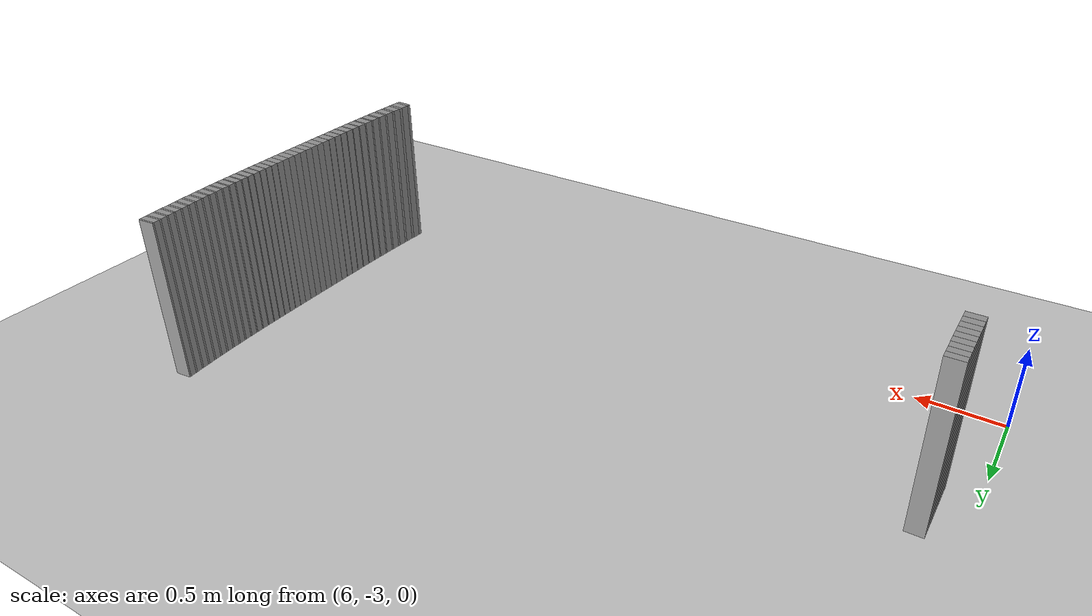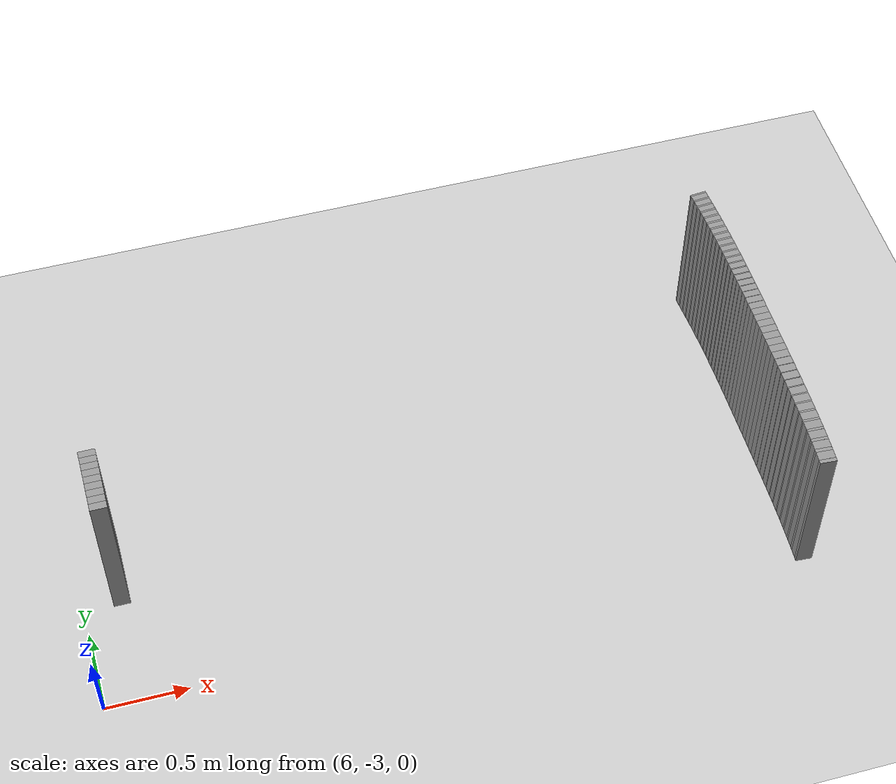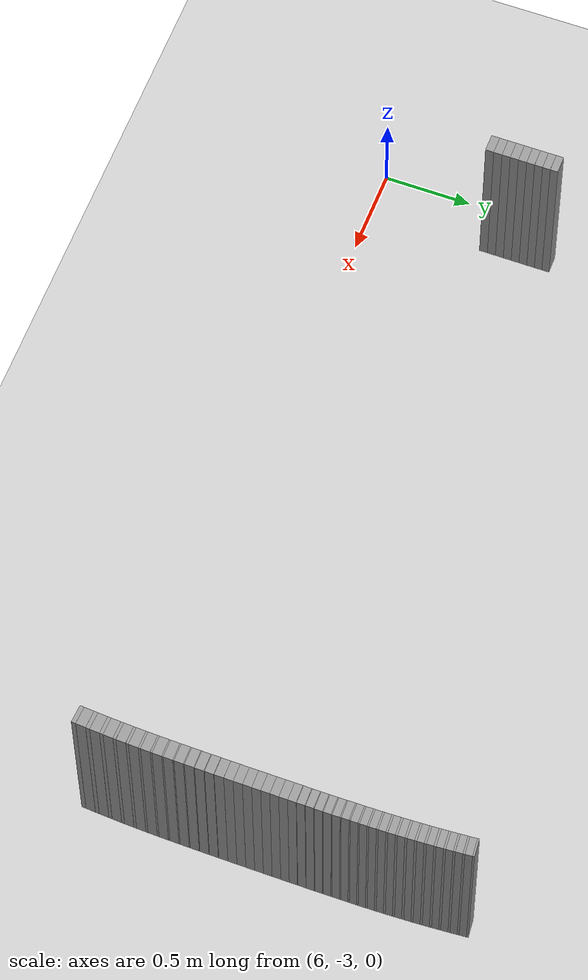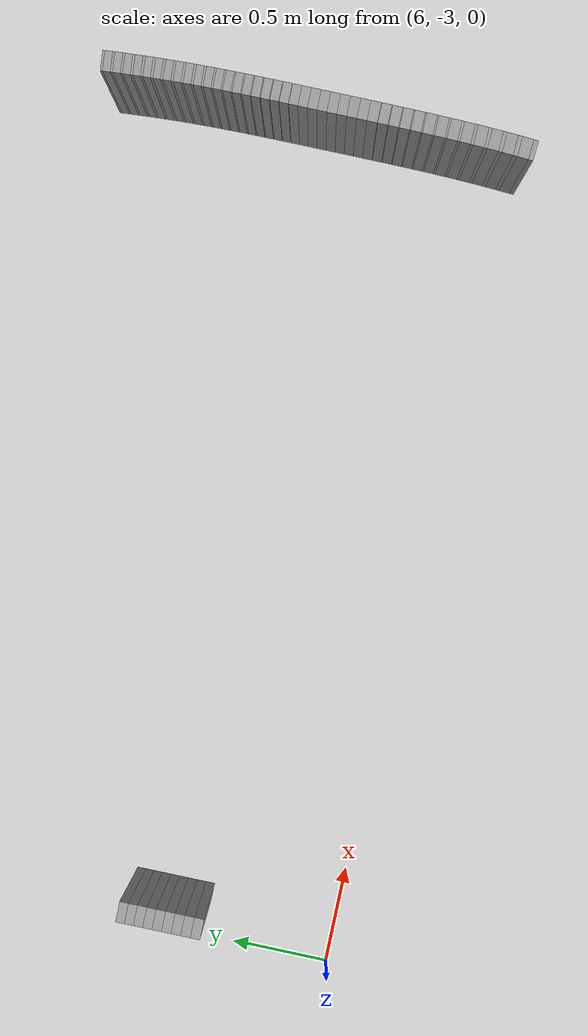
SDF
<sdf version="1.6">
 <world name="default">
  <include><uri>model://ground_plane</uri></include>
  <include><uri>model://sun</uri></include>
  <model name="wall_433_outward">
   <static>true</static>
   <link name="link">
    <collision name="collision">
     <geometry><box><size>0.010283247363122095 0.1 1.0</size></box></geometry>
    </collision>
    <visual name="visual">
     <geometry><box><size>0.010283247363122095 0.1 1.0</size></box></geometry>
     <material>
      <script><uri>file://media/materials/scripts/gazebo.material</uri><name>Gazebo/Gray</name></script>
     </material>
    </visual>
   </link>
   <pose>10.190817480555708 -1.003912621451101 0.5 0 0 -1.4846179983201915</pose>
  </model>
  <model name="wall_434_outward">
   <static>true</static>
   <link name="link">
    <collision name="collision">
     <geometry><box><size>0.03836517775578271 0.1 1.0</size></box></geometry>
    </collision>
    <visual name="visual">
     <geometry><box><size>0.03836517775578271 0.1 1.0</size></box></geometry>
     <material>
      <script><uri>file://media/materials/scripts/gazebo.material</uri><name>Gazebo/Gray</name></script>
     </material>
    </visual>
   </link>
   <pose>10.192861969558543 -1.028150746987186 0.5 0 0 -1.4871888129927435</pose>
  </model>
  <model name="wall_435_outward">
   <static>true</static>
   <link name="link">
    <collision name="collision">
     <geometry><box><size>0.010640363585990922 0.1 1.0</size></box></geometry>
    </collision>
    <visual name="visual">
     <geometry><box><size>0.010640363585990922 0.1 1.0</size></box></geometry>
     <material>
      <script><uri>file://media/materials/scripts/gazebo.material</uri><name>Gazebo/Gray</name></script>
     </material>
    </visual>
   </link>
   <pose>10.19489409511391 -1.0525690907911234 0.5 0 0 -1.4898489070264267</pose>
  </model>
  <model name="wall_436_outward">
   <static>true</static>
   <link name="link">
    <collision name="collision">
     <geometry><box><size>0.03789650581154676 0.1 1.0</size></box></geometry>
    </collision>
    <visual name="visual">
     <geometry><box><size>0.03789650581154676 0.1 1.0</size></box></geometry>
     <material>
      <script><uri>file://media/materials/scripts/gazebo.material</uri><name>Gazebo/Gray</name></script>
     </material>
    </visual>
   </link>
   <pose>10.196806173180468 -1.0767620684265373 0.5 0 0 -1.4925090010601008</pose>
  </model>
  <model name="wall_437_outward">
   <static>true</static>
   <link name="link">
    <collision name="collision">
     <geometry><box><size>0.011047826671488865 0.1 1.0</size></box></geometry>
    </collision>
    <visual name="visual">
     <geometry><box><size>0.011047826671488865 0.1 1.0</size></box></geometry>
     <material>
      <script><uri>file://media/materials/scripts/gazebo.material</uri><name>Gazebo/Gray</name></script>
     </material>
    </visual>
   </link>
   <pose>10.198704865481698 -1.1011604513574302 0.5 0 0 -1.4952709612395514</pose>
  </model>
  <model name="wall_438_outward">
   <static>true</static>
   <link name="link">
    <collision name="collision">
     <geometry><box><size>0.03755785765400024 0.1 1.0</size></box></geometry>
    </collision>
    <visual name="visual">
     <geometry><box><size>0.03755785765400024 0.1 1.0</size></box></geometry>
     <material>
      <script><uri>file://media/materials/scripts/gazebo.material</uri><name>Gazebo/Gray</name></script>
     </material>
    </visual>
   </link>
   <pose>10.200486877925421 -1.1253978558702395 0.5 0 0 -1.4980329214189771</pose>
  </model>
  <model name="wall_439_outward">
   <static>true</static>
   <link name="link">
    <collision name="collision">
     <geometry><box><size>0.011444863622709397 0.1 1.0</size></box></geometry>
    </collision>
    <visual name="visual">
     <geometry><box><size>0.011444863622709397 0.1 1.0</size></box></geometry>
     <material>
      <script><uri>file://media/materials/scripts/gazebo.material</uri><name>Gazebo/Gray</name></script>
     </material>
    </visual>
   </link>
   <pose>10.202251776108643 -1.1498355506836848 0.5 0 0 -1.50089414122854</pose>
  </model>
  <model name="wall_440_outward">
   <static>true</static>
   <link name="link">
    <collision name="collision">
     <geometry><box><size>0.03734177833056534 0.1 1.0</size></box></geometry>
    </collision>
    <visual name="visual">
     <geometry><box><size>0.03734177833056534 0.1 1.0</size></box></geometry>
     <material>
      <script><uri>file://media/materials/scripts/gazebo.material</uri><name>Gazebo/Gray</name></script>
     </material>
    </visual>
   </link>
   <pose>10.203902237930976 -1.1741729541886838 0.5 0 0 -1.5037553610381957</pose>
  </model>
  <model name="wall_441_outward">
   <static>true</static>
   <link name="link">
    <collision name="collision">
     <geometry><box><size>0.01176774374360028 0.1 1.0</size></box></geometry>
    </collision>
    <visual name="visual">
     <geometry><box><size>0.01176774374360028 0.1 1.0</size></box></geometry>
     <material>
      <script><uri>file://media/materials/scripts/gazebo.material</uri><name>Gazebo/Gray</name></script>
     </material>
    </visual>
   </link>
   <pose>10.20552990718752 -1.1986736895157213 0.5 0 0 -1.5066973012178086</pose>
  </model>
  <model name="wall_442_outward">
   <static>true</static>
   <link name="link">
    <collision name="collision">
     <geometry><box><size>0.03724069599607796 0.1 1.0</size></box></geometry>
    </collision>
    <visual name="visual">
     <geometry><box><size>0.03724069599607796 0.1 1.0</size></box></geometry>
     <material>
      <script><uri>file://media/materials/scripts/gazebo.material</uri><name>Gazebo/Gray</name></script>
     </material>
    </visual>
   </link>
   <pose>10.207044855907323 -1.2231310150760841 0.5 0 0 -1.5096392413975013</pose>
  </model>
  <model name="wall_443_outward">
   <static>true</static>
   <link name="link">
    <collision name="collision">
     <geometry><box><size>0.012011477919110995 0.1 1.0</size></box></geometry>
    </collision>
    <visual name="visual">
     <geometry><box><size>0.012011477919110995 0.1 1.0</size></box></geometry>
     <material>
      <script><uri>file://media/materials/scripts/gazebo.material</uri><name>Gazebo/Gray</name></script>
     </material>
    </visual>
   </link>
   <pose>10.208531974571702 -1.2477121384949186 0.5 0 0 -1.512642115390247</pose>
  </model>
  <model name="wall_444_outward">
   <static>true</static>
   <link name="link">
    <collision name="collision">
     <geometry><box><size>0.03724624450224491 0.1 1.0</size></box></geometry>
    </collision>
    <visual name="visual">
     <geometry><box><size>0.03724624450224491 0.1 1.0</size></box></geometry>
     <material>
      <script><uri>file://media/materials/scripts/gazebo.material</uri><name>Gazebo/Gray</name></script>
     </material>
    </visual>
   </link>
   <pose>10.209907606257449 -1.2723025316080978 0.5 0 0 -1.5156449893829436</pose>
  </model>
  <model name="wall_445_outward">
   <static>true</static>
   <link name="link">
    <collision name="collision">
     <geometry><box><size>0.012053729576341491 0.1 1.0</size></box></geometry>
    </collision>
    <visual name="visual">
     <geometry><box><size>0.012053729576341491 0.1 1.0</size></box></geometry>
     <material>
      <script><uri>file://media/materials/scripts/gazebo.material</uri><name>Gazebo/Gray</name></script>
     </material>
    </visual>
   </link>
   <pose>10.211248261488908 -1.296916013388779 0.5 0 0 -1.5186584263377252</pose>
  </model>
  <model name="wall_446_outward">
   <static>true</static>
   <link name="link">
    <collision name="collision">
     <geometry><box><size>0.037349229340165276 0.1 1.0</size></box></geometry>
    </collision>
    <visual name="visual">
     <geometry><box><size>0.037349229340165276 0.1 1.0</size></box></geometry>
     <material>
      <script><uri>file://media/materials/scripts/gazebo.material</uri><name>Gazebo/Gray</name></script>
     </material>
    </visual>
   </link>
   <pose>10.212479358719358 -1.3215867747268046 0.5 0 0 -1.5216718632926327</pose>
  </model>
  <model name="wall_447_outward">
   <static>true</static>
   <link name="link">
    <collision name="collision">
     <geometry><box><size>0.011939399232365483 0.1 1.0</size></box></geometry>
    </collision>
    <visual name="visual">
     <geometry><box><size>0.011939399232365483 0.1 1.0</size></box></geometry>
     <material>
      <script><uri>file://media/materials/scripts/gazebo.material</uri><name>Gazebo/Gray</name></script>
     </material>
    </visual>
   </link>
   <pose>10.213671712107487 -1.3462022074227273 0.5 0 0 -1.5246567175327987</pose>
  </model>
  <model name="wall_448_outward">
   <static>true</static>
   <link name="link">
    <collision name="collision">
     <geometry><box><size>0.03754241336318813 0.1 1.0</size></box></geometry>
    </collision>
    <visual name="visual">
     <geometry><box><size>0.03754241336318813 0.1 1.0</size></box></geometry>
     <material>
      <script><uri>file://media/materials/scripts/gazebo.material</uri><name>Gazebo/Gray</name></script>
     </material>
    </visual>
   </link>
   <pose>10.214756869410241 -1.3709192841045637 0.5 0 0 -1.527641571773139</pose>
  </model>
  <model name="wall_449_outward">
   <static>true</static>
   <link name="link">
    <collision name="collision">
     <geometry><box><size>0.011591471049819972 0.1 1.0</size></box></geometry>
    </collision>
    <visual name="visual">
     <geometry><box><size>0.011591471049819972 0.1 1.0</size></box></geometry>
     <material>
      <script><uri>file://media/materials/scripts/gazebo.material</uri><name>Gazebo/Gray</name></script>
     </material>
    </visual>
   </link>
   <pose>10.215799940057083 -1.3954640542073316 0.5 0 0 -1.530539443591488</pose>
  </model>
  <model name="wall_450_outward">
   <static>true</static>
   <link name="link">
    <collision name="collision">
     <geometry><box><size>0.03781951222594938 0.1 1.0</size></box></geometry>
    </collision>
    <visual name="visual">
     <geometry><box><size>0.03781951222594938 0.1 1.0</size></box></geometry>
     <material>
      <script><uri>file://media/materials/scripts/gazebo.material</uri><name>Gazebo/Gray</name></script>
     </material>
    </visual>
   </link>
   <pose>10.216739480764275 -1.4201516555484939 0.5 0 0 -1.5334373154098275</pose>
  </model>
  <model name="wall_451_outward">
   <static>true</static>
   <link name="link">
    <collision name="collision">
     <geometry><box><size>0.011036451604866762 0.1 1.0</size></box></geometry>
    </collision>
    <visual name="visual">
     <geometry><box><size>0.011036451604866762 0.1 1.0</size></box></geometry>
     <material>
      <script><uri>file://media/materials/scripts/gazebo.material</uri><name>Gazebo/Gray</name></script>
     </material>
    </visual>
   </link>
   <pose>10.217636658178298 -1.4445631401156602 0.5 0 0 -1.5361964318117476</pose>
  </model>
  <model name="wall_452_outward">
   <static>true</static>
   <link name="link">
    <collision name="collision">
     <geometry><box><size>0.038175895245052646 0.1 1.0</size></box></geometry>
    </collision>
    <visual name="visual">
     <geometry><box><size>0.038175895245052646 0.1 1.0</size></box></geometry>
     <material>
      <script><uri>file://media/materials/scripts/gazebo.material</uri><name>Gazebo/Gray</name></script>
     </material>
    </visual>
   </link>
   <pose>10.218435222540158 -1.4691563355916308 0.5 0 0 -1.5389555482137214</pose>
  </model>
  <model name="wall_453_outward">
   <static>true</static>
   <link name="link">
    <collision name="collision">
     <geometry><box><size>0.010277246191836325 0.1 1.0</size></box></geometry>
    </collision>
    <visual name="visual">
     <geometry><box><size>0.010277246191836325 0.1 1.0</size></box></geometry>
     <material>
      <script><uri>file://media/materials/scripts/gazebo.material</uri><name>Gazebo/Gray</name></script>
     </material>
    </visual>
   </link>
   <pose>10.219193288505094 -1.4933710298343397 0.5 0 0 -1.5415248625886087</pose>
  </model>
  <model name="wall_454_outward">
   <static>true</static>
   <link name="link">
    <collision name="collision">
     <geometry><box><size>0.038607292276248074 0.1 1.0</size></box></geometry>
    </collision>
    <visual name="visual">
     <geometry><box><size>0.038607292276248074 0.1 1.0</size></box></geometry>
     <material>
      <script><uri>file://media/materials/scripts/gazebo.material</uri><name>Gazebo/Gray</name></script>
     </material>
    </visual>
   </link>
   <pose>10.219859069649047 -1.5178042164042518 0.5 0 0 -1.5440941769632621</pose>
  </model>
  <model name="wall_455_outward">
   <static>true</static>
   <link name="link">
    <collision name="collision">
     <geometry><box><size>0.00938313225432359 0.1 1.0</size></box></geometry>
    </collision>
    <visual name="visual">
     <geometry><box><size>0.00938313225432359 0.1 1.0</size></box></geometry>
     <material>
      <script><uri>file://media/materials/scripts/gazebo.material</uri><name>Gazebo/Gray</name></script>
     </material>
    </visual>
   </link>
   <pose>10.220488715447278 -1.5417911557562411 0.5 0 0 -1.5464399621782812</pose>
  </model>
  <model name="wall_456_outward">
   <static>true</static>
   <link name="link">
    <collision name="collision">
     <geometry><box><size>0.03911100765697236 0.1 1.0</size></box></geometry>
    </collision>
    <visual name="visual">
     <geometry><box><size>0.03911100765697236 0.1 1.0</size></box></geometry>
     <material>
      <script><uri>file://media/materials/scripts/gazebo.material</uri><name>Gazebo/Gray</name></script>
     </material>
    </visual>
   </link>
   <pose>10.221033366860773 -1.5660320973926742 0.5 0 0 -1.5487857473931927</pose>
  </model>
  <model name="wall_457_outward">
   <static>true</static>
   <link name="link">
    <collision name="collision">
     <geometry><box><size>0.008387143192890138 0.1 1.0</size></box></geometry>
    </collision>
    <visual name="visual">
     <geometry><box><size>0.008387143192890138 0.1 1.0</size></box></geometry>
     <material>
      <script><uri>file://media/materials/scripts/gazebo.material</uri><name>Gazebo/Gray</name></script>
     </material>
    </visual>
   </link>
   <pose>10.221547264470246 -1.5897756045523006 0.5 0 0 -1.550882534727871</pose>
  </model>
  <model name="wall_458_outward">
   <static>true</static>
   <link name="link">
    <collision name="collision">
     <geometry><box><size>0.03968278660839817 0.1 1.0</size></box></geometry>
    </collision>
    <visual name="visual">
     <geometry><box><size>0.03968278660839817 0.1 1.0</size></box></geometry>
     <material>
      <script><uri>file://media/materials/scripts/gazebo.material</uri><name>Gazebo/Gray</name></script>
     </material>
    </visual>
   </link>
   <pose>10.221984264358813 -1.6138065887821398 0.5 0 0 -1.5529793220624908</pose>
  </model>
  <model name="wall_459_outward">
   <static>true</static>
   <link name="link">
    <collision name="collision">
     <geometry><box><size>0.007295739725011902 0.1 1.0</size></box></geometry>
    </collision>
    <visual name="visual">
     <geometry><box><size>0.007295739725011902 0.1 1.0</size></box></geometry>
     <material>
      <script><uri>file://media/materials/scripts/gazebo.material</uri><name>Gazebo/Gray</name></script>
     </material>
    </visual>
   </link>
   <pose>10.222396098000551 -1.6372922362371418 0.5 0 0 -1.554803258005004</pose>
  </model>
  <model name="wall_460_outward">
   <static>true</static>
   <link name="link">
    <collision name="collision">
     <geometry><box><size>0.04031791815811947 0.1 1.0</size></box></geometry>
    </collision>
    <visual name="visual">
     <geometry><box><size>0.04031791815811947 0.1 1.0</size></box></geometry>
     <material>
      <script><uri>file://media/materials/scripts/gazebo.material</uri><name>Gazebo/Gray</name></script>
     </material>
    </visual>
   </link>
   <pose>10.222740061558985 -1.6610965750997104 0.5 0 0 -1.5566271939475849</pose>
  </model>
  <model name="wall_461_outward">
   <static>true</static>
   <link name="link">
    <collision name="collision">
     <geometry><box><size>0.006215764477734683 0.1 1.0</size></box></geometry>
    </collision>
    <visual name="visual">
     <geometry><box><size>0.006215764477734683 0.1 1.0</size></box></geometry>
     <material>
      <script><uri>file://media/materials/scripts/gazebo.material</uri><name>Gazebo/Gray</name></script>
     </material>
    </visual>
   </link>
   <pose>10.223064892459252 -1.684361145555936 0.5 0 0 -1.5581811356926123</pose>
  </model>
  <model name="wall_462_outward">
   <static>true</static>
   <link name="link">
    <collision name="collision">
     <geometry><box><size>0.041008139792125295 0.1 1.0</size></box></geometry>
    </collision>
    <visual name="visual">
     <geometry><box><size>0.041008139792125295 0.1 1.0</size></box></geometry>
     <material>
      <script><uri>file://media/materials/scripts/gazebo.material</uri><name>Gazebo/Gray</name></script>
     </material>
    </visual>
   </link>
   <pose>10.223330893952825 -1.7079715960588495 0.5 0 0 -1.5597350774371945</pose>
  </model>
  <model name="wall_463_outward">
   <static>true</static>
   <link name="link">
    <collision name="collision">
     <geometry><box><size>0.005172292526792086 0.1 1.0</size></box></geometry>
    </collision>
    <visual name="visual">
     <geometry><box><size>0.005172292526792086 0.1 1.0</size></box></geometry>
     <material>
      <script><uri>file://media/materials/scripts/gazebo.material</uri><name>Gazebo/Gray</name></script>
     </material>
    </visual>
   </link>
   <pose>10.22358295148771 -1.7310604345014224 0.5 0 0 -1.5610281509294688</pose>
  </model>
  <model name="wall_464_outward">
   <static>true</static>
   <link name="link">
    <collision name="collision">
     <geometry><box><size>0.04174400456791671 0.1 1.0</size></box></geometry>
    </collision>
    <visual name="visual">
     <geometry><box><size>0.04174400456791671 0.1 1.0</size></box></geometry>
     <material>
      <script><uri>file://media/materials/scripts/gazebo.material</uri><name>Gazebo/Gray</name></script>
     </material>
    </visual>
   </link>
   <pose>10.223785103255977 -1.7545177100823364 0.5 0 0 -1.5623212244213236</pose>
  </model>
  <model name="wall_465_outward">
   <static>true</static>
   <link name="link">
    <collision name="collision">
     <geometry><box><size>0.004238774840771875 0.1 1.0</size></box></geometry>
    </collision>
    <visual name="visual">
     <geometry><box><size>0.004238774840771875 0.1 1.0</size></box></geometry>
     <material>
      <script><uri>file://media/materials/scripts/gazebo.material</uri><name>Gazebo/Gray</name></script>
     </material>
    </visual>
   </link>
   <pose>10.22397770947385 -1.7775082919302836 0.5 0 0 -1.5633809183298129</pose>
  </model>
  <model name="wall_466_outward">
   <static>true</static>
   <link name="link">
    <collision name="collision">
     <geometry><box><size>0.04251159002583642 0.1 1.0</size></box></geometry>
    </collision>
    <visual name="visual">
     <geometry><box><size>0.04251159002583642 0.1 1.0</size></box></geometry>
     <material>
      <script><uri>file://media/materials/scripts/gazebo.material</uri><name>Gazebo/Gray</name></script>
     </material>
    </visual>
   </link>
   <pose>10.224128520309474 -1.8008829867795 0.5 0 0 -1.564440612238371</pose>
  </model>
  <model name="wall_467_outward">
   <static>true</static>
   <link name="link">
    <collision name="collision">
     <geometry><box><size>0.003348781686091801 0.1 1.0</size></box></geometry>
    </collision>
    <visual name="visual">
     <geometry><box><size>0.003348781686091801 0.1 1.0</size></box></geometry>
     <material>
      <script><uri>file://media/materials/scripts/gazebo.material</uri><name>Gazebo/Gray</name></script>
     </material>
    </visual>
   </link>
   <pose>10.22427285527656 -1.8238127178259183 0.5 0 0 -1.565277807757937</pose>
  </model>
  <model name="wall_468_outward">
   <static>true</static>
   <link name="link">
    <collision name="collision">
     <geometry><box><size>0.04329575768152345 0.1 1.0</size></box></geometry>
    </collision>
    <visual name="visual">
     <geometry><box><size>0.04329575768152345 0.1 1.0</size></box></geometry>
     <material>
      <script><uri>file://media/materials/scripts/gazebo.material</uri><name>Gazebo/Gray</name></script>
     </material>
    </visual>
   </link>
   <pose>10.224383435741588 -1.8471347248098726 0.5 0 0 -1.5661150032770126</pose>
  </model>
  <model name="wall_469_outward">
   <static>true</static>
   <link name="link">
    <collision name="collision">
     <geometry><box><size>0.002627161558870315 0.1 1.0</size></box></geometry>
    </collision>
    <visual name="visual">
     <geometry><box><size>0.002627161558870315 0.1 1.0</size></box></geometry>
     <material>
      <script><uri>file://media/materials/scripts/gazebo.material</uri><name>Gazebo/Gray</name></script>
     </material>
    </visual>
   </link>
   <pose>10.224490062630807 -1.8700959365882126 0.5 0 0 -1.5667717937134578</pose>
  </model>
  <model name="wall_470_outward">
   <static>true</static>
   <link name="link">
    <collision name="collision">
     <geometry><box><size>0.04407969489634317 0.1 1.0</size></box></geometry>
    </collision>
    <visual name="visual">
     <geometry><box><size>0.04407969489634317 0.1 1.0</size></box></geometry>
     <material>
      <script><uri>file://media/materials/scripts/gazebo.material</uri><name>Gazebo/Gray</name></script>
     </material>
    </visual>
   </link>
   <pose>10.22456957355965 -1.893449229193441 0.5 0 0 -1.5674285841508886</pose>
  </model>
  <model name="wall_471_outward">
   <static>true</static>
   <link name="link">
    <collision name="collision">
     <geometry><box><size>0.0020243878247005226 0.1 1.0</size></box></geometry>
    </collision>
    <visual name="visual">
     <geometry><box><size>0.0020243878247005226 0.1 1.0</size></box></geometry>
     <material>
      <script><uri>file://media/materials/scripts/gazebo.material</uri><name>Gazebo/Gray</name></script>
     </material>
    </visual>
   </link>
   <pose>10.224646694489833 -1.9165011414250834 0.5 0 0 -1.5679346811290436</pose>
  </model>
  <model name="wall_472_outward">
   <static>true</static>
   <link name="link">
    <collision name="collision">
     <geometry><box><size>0.044844862980769326 0.1 1.0</size></box></geometry>
    </collision>
    <visual name="visual">
     <geometry><box><size>0.044844862980769326 0.1 1.0</size></box></geometry>
     <material>
      <script><uri>file://media/materials/scripts/gazebo.material</uri><name>Gazebo/Gray</name></script>
     </material>
    </visual>
   </link>
   <pose>10.224702408106447 -1.9399357004767546 0.5 0 0 -1.5684407781064484</pose>
  </model>
  <model name="wall_473_outward">
   <static>true</static>
   <link name="link">
    <collision name="collision">
     <geometry><box><size>0.04713773069509924 0.1 1.0</size></box></geometry>
    </collision>
    <visual name="visual">
     <geometry><box><size>0.04713773069509924 0.1 1.0</size></box></geometry>
     <material>
      <script><uri>file://media/materials/scripts/gazebo.material</uri><name>Gazebo/Gray</name></script>
     </material>
    </visual>
   </link>
   <pose>10.224792642894194 -1.98592690540604 0.5 0 0 -1.5692087355949056</pose>
  </model>
  <model name="wall_474_outward">
   <static>true</static>
   <link name="link">
    <collision name="collision">
     <geometry><box><size>0.04746449826702457 0.1 1.0</size></box></geometry>
    </collision>
    <visual name="visual">
     <geometry><box><size>0.04746449826702457 0.1 1.0</size></box></geometry>
     <material>
      <script><uri>file://media/materials/scripts/gazebo.material</uri><name>Gazebo/Gray</name></script>
     </material>
    </visual>
   </link>
   <pose>10.224853301384439 -2.0332279788053347 0.5 0 0 -1.569817035437909</pose>
  </model>
  <model name="wall_475_outward">
   <static>true</static>
   <link name="link">
    <collision name="collision">
     <geometry><box><size>0.047863029690683054 0.1 1.0</size></box></geometry>
    </collision>
    <visual name="visual">
     <geometry><box><size>0.047863029690683054 0.1 1.0</size></box></geometry>
     <material>
      <script><uri>file://media/materials/scripts/gazebo.material</uri><name>Gazebo/Gray</name></script>
     </material>
    </visual>
   </link>
   <pose>10.22488818740097 -2.0808917285711144 0.5 0 0 -1.5703097201458032</pose>
  </model>
  <model name="wall_476_outward">
   <static>true</static>
   <link name="link">
    <collision name="collision">
     <geometry><box><size>0.04833263071428017 0.1 1.0</size></box></geometry>
    </collision>
    <visual name="visual">
     <geometry><box><size>0.04833263071428017 0.1 1.0</size></box></geometry>
     <material>
      <script><uri>file://media/materials/scripts/gazebo.material</uri><name>Gazebo/Gray</name></script>
     </material>
    </visual>
   </link>
   <pose>10.224900852636182 -2.128989555918746 0.5 0 0 -1.5707541192258119</pose>
  </model>
  <model name="wall_477_outward">
   <static>true</static>
   <link name="link">
    <collision name="collision">
     <geometry><box><size>0.04883749587435158 0.1 1.0</size></box></geometry>
    </collision>
    <visual name="visual">
     <geometry><box><size>0.04883749587435158 0.1 1.0</size></box></geometry>
     <material>
      <script><uri>file://media/materials/scripts/gazebo.material</uri><name>Gazebo/Gray</name></script>
     </material>
    </visual>
   </link>
   <pose>10.224892040101896 -2.177574617211935 0.5 0 0 -1.5711989901911512</pose>
  </model>
  <model name="wall_478_outward">
   <static>true</static>
   <link name="link">
    <collision name="collision">
     <geometry><box><size>0.049409664145815255 0.1 1.0</size></box></geometry>
    </collision>
    <visual name="visual">
     <geometry><box><size>0.049409664145815255 0.1 1.0</size></box></geometry>
     <material>
      <script><uri>file://media/materials/scripts/gazebo.material</uri><name>Gazebo/Gray</name></script>
     </material>
    </visual>
   </link>
   <pose>10.224859787293234 -2.2266981850689267 0.5 0 0 -1.5717038527380638</pose>
  </model>
  <model name="wall_479_outward">
   <static>true</static>
   <link name="link">
    <collision name="collision">
     <geometry><box><size>0.05007674980151808 0.1 1.0</size></box></geometry>
    </collision>
    <visual name="visual">
     <geometry><box><size>0.05007674980151808 0.1 1.0</size></box></geometry>
     <material>
      <script><uri>file://media/materials/scripts/gazebo.material</uri><name>Gazebo/Gray</name></script>
     </material>
    </visual>
   </link>
   <pose>10.22479880697582 -2.276441352177122 0.5 0 0 -1.5723363652302316</pose>
  </model>
  <model name="wall_480_outward">
   <static>true</static>
   <link name="link">
    <collision name="collision">
     <geometry><box><size>0.050862873098046234 0.1 1.0</size></box></geometry>
    </collision>
    <visual name="visual">
     <geometry><box><size>0.050862873098046234 0.1 1.0</size></box></geometry>
     <material>
      <script><uri>file://media/materials/scripts/gazebo.material</uri><name>Gazebo/Gray</name></script>
     </material>
    </visual>
   </link>
   <pose>10.224699958742967 -2.3269110624747293 0.5 0 0 -1.5731669457232835</pose>
  </model>
  <model name="wall_481_outward">
   <static>true</static>
   <link name="link">
    <collision name="collision">
     <geometry><box><size>0.0022359848305291926 0.1 1.0</size></box></geometry>
    </collision>
    <visual name="visual">
     <geometry><box><size>0.0022359848305291926 0.1 1.0</size></box></geometry>
     <material>
      <script><uri>file://media/materials/scripts/gazebo.material</uri><name>Gazebo/Gray</name></script>
     </material>
    </visual>
   </link>
   <pose>10.224636379899845 -2.353460415136021 0.5 0 0 -1.5737396915588135</pose>
  </model>
  <model name="wall_482_outward">
   <static>true</static>
   <link name="link">
    <collision name="collision">
     <geometry><box><size>0.04956770907240943 0.1 1.0</size></box></geometry>
    </collision>
    <visual name="visual">
     <geometry><box><size>0.04956770907240943 0.1 1.0</size></box></geometry>
     <material>
      <script><uri>file://media/materials/scripts/gazebo.material</uri><name>Gazebo/Gray</name></script>
     </material>
    </visual>
   </link>
   <pose>10.224546287416999 -2.3793621052388643 0.5 0 0 -1.5742986877956604</pose>
  </model>
  <model name="wall_483_outward">
   <static>true</static>
   <link name="link">
    <collision name="collision">
     <geometry><box><size>0.002980876495720222 0.1 1.0</size></box></geometry>
    </collision>
    <visual name="visual">
     <geometry><box><size>0.002980876495720222 0.1 1.0</size></box></geometry>
     <material>
      <script><uri>file://media/materials/scripts/gazebo.material</uri><name>Gazebo/Gray</name></script>
     </material>
    </visual>
   </link>
   <pose>10.224453154851936 -2.4056362325719283 0.5 0 0 -1.5750439069887936</pose>
  </model>
  <model name="wall_484_outward">
   <static>true</static>
   <link name="link">
    <collision name="collision">
     <geometry><box><size>0.04995510465335653 0.1 1.0</size></box></geometry>
    </collision>
    <visual name="visual">
     <geometry><box><size>0.04995510465335653 0.1 1.0</size></box></geometry>
     <material>
      <script><uri>file://media/materials/scripts/gazebo.material</uri><name>Gazebo/Gray</name></script>
     </material>
    </visual>
   </link>
   <pose>10.224322116725176 -2.432103898381153 0.5 0 0 -1.5757891261814734</pose>
  </model>
  <model name="wall_485_outward">
   <static>true</static>
   <link name="link">
    <collision name="collision">
     <geometry><box><size>0.003906443457769996 0.1 1.0</size></box></geometry>
    </collision>
    <visual name="visual">
     <geometry><box><size>0.003906443457769996 0.1 1.0</size></box></geometry>
     <material>
      <script><uri>file://media/materials/scripts/gazebo.material</uri><name>Gazebo/Gray</name></script>
     </material>
    </visual>
   </link>
   <pose>10.224185749822494 -2.459034326316268 0.5 0 0 -1.576765737201056</pose>
  </model>
  <model name="wall_486_outward">
   <static>true</static>
   <link name="link">
    <collision name="collision">
     <geometry><box><size>0.050367171268273635 0.1 1.0</size></box></geometry>
    </collision>
    <visual name="visual">
     <geometry><box><size>0.050367171268273635 0.1 1.0</size></box></geometry>
     <material>
      <script><uri>file://media/materials/scripts/gazebo.material</uri><name>Gazebo/Gray</name></script>
     </material>
    </visual>
   </link>
   <pose>10.22399916599084 -2.4861704913625022 0.5 0 0 -1.5777423482208455</pose>
  </model>
  <model name="wall_487_outward">
   <static>true</static>
   <link name="link">
    <collision name="collision">
     <geometry><box><size>0.0050886686239555055 0.1 1.0</size></box></geometry>
    </collision>
    <visual name="visual">
     <geometry><box><size>0.0050886686239555055 0.1 1.0</size></box></geometry>
     <material>
      <script><uri>file://media/materials/scripts/gazebo.material</uri><name>Gazebo/Gray</name></script>
     </material>
    </visual>
   </link>
   <pose>10.223803332087357 -2.513897717872199 0.5 0 0 -1.5790145157202125</pose>
  </model>
  <model name="wall_488_outward">
   <static>true</static>
   <link name="link">
    <collision name="collision">
     <geometry><box><size>0.05081364450698658 0.1 1.0</size></box></geometry>
    </collision>
    <visual name="visual">
     <geometry><box><size>0.05081364450698658 0.1 1.0</size></box></geometry>
     <material>
      <script><uri>file://media/materials/scripts/gazebo.material</uri><name>Gazebo/Gray</name></script>
     </material>
    </visual>
   </link>
   <pose>10.223541306323336 -2.5418476443698994 0.5 0 0 -1.5802866832191194</pose>
  </model>
  <model name="wall_489_outward">
   <static>true</static>
   <link name="link">
    <collision name="collision">
     <geometry><box><size>0.00646469992118338 0.1 1.0</size></box></geometry>
    </collision>
    <visual name="visual">
     <geometry><box><size>0.00646469992118338 0.1 1.0</size></box></geometry>
     <material>
      <script><uri>file://media/materials/scripts/gazebo.material</uri><name>Gazebo/Gray</name></script>
     </material>
    </visual>
   </link>
   <pose>10.223264290683463 -2.570485473074851 0.5 0 0 -1.581902858902812</pose>
  </model>
  <model name="wall_490_outward">
   <static>true</static>
   <link name="link">
    <collision name="collision">
     <geometry><box><size>0.05129950681968474 0.1 1.0</size></box></geometry>
    </collision>
    <visual name="visual">
     <geometry><box><size>0.05129950681968474 0.1 1.0</size></box></geometry>
     <material>
      <script><uri>file://media/materials/scripts/gazebo.material</uri><name>Gazebo/Gray</name></script>
     </material>
    </visual>
   </link>
   <pose>10.222902065709084 -2.5993653011838997 0.5 0 0 -1.5835190345868742</pose>
  </model>
  <model name="wall_491_outward">
   <static>true</static>
   <link name="link">
    <collision name="collision">
     <geometry><box><size>0.008045869892990932 0.1 1.0</size></box></geometry>
    </collision>
    <visual name="visual">
     <geometry><box><size>0.008045869892990932 0.1 1.0</size></box></geometry>
     <material>
      <script><uri>file://media/materials/scripts/gazebo.material</uri><name>Gazebo/Gray</name></script>
     </material>
    </visual>
   </link>
   <pose>10.222516467705903 -2.6290354769665933 0.5 0 0 -1.5855305034166103</pose>
  </model>
  <model name="wall_492_outward">
   <static>true</static>
   <link name="link">
    <collision name="collision">
     <geometry><box><size>0.051821986685660036 0.1 1.0</size></box></geometry>
    </collision>
    <visual name="visual">
     <geometry><box><size>0.051821986685660036 0.1 1.0</size></box></geometry>
     <material>
      <script><uri>file://media/materials/scripts/gazebo.material</uri><name>Gazebo/Gray</name></script>
     </material>
    </visual>
   </link>
   <pose>10.222023319187084 -2.658965335730383 0.5 0 0 -1.5875419722461745</pose>
  </model>
  <model name="wall_493_outward">
   <static>true</static>
   <link name="link">
    <collision name="collision">
     <geometry><box><size>0.009855858724145626 0.1 1.0</size></box></geometry>
    </collision>
    <visual name="visual">
     <geometry><box><size>0.009855858724145626 0.1 1.0</size></box></geometry>
     <material>
      <script><uri>file://media/materials/scripts/gazebo.material</uri><name>Gazebo/Gray</name></script>
     </material>
    </visual>
   </link>
   <pose>10.221494785365374 -2.689799716385594 0.5 0 0 -1.5900059394203894</pose>
  </model>
  <model name="wall_494_outward">
   <static>true</static>
   <link name="link">
    <collision name="collision">
     <geometry><box><size>0.05237271749687289 0.1 1.0</size></box></geometry>
    </collision>
    <visual name="visual">
     <geometry><box><size>0.05237271749687289 0.1 1.0</size></box></geometry>
     <material>
      <script><uri>file://media/materials/scripts/gazebo.material</uri><name>Gazebo/Gray</name></script>
     </material>
    </visual>
   </link>
   <pose>10.220832619870134 -2.7209069450958863 0.5 0 0 -1.5924699065946044</pose>
  </model>
  <model name="wall_495_outward">
   <static>true</static>
   <link name="link">
    <collision name="collision">
     <geometry><box><size>0.011879285617780466 0.1 1.0</size></box></geometry>
    </collision>
    <visual name="visual">
     <geometry><box><size>0.011879285617780466 0.1 1.0</size></box></geometry>
     <material>
      <script><uri>file://media/materials/scripts/gazebo.material</uri><name>Gazebo/Gray</name></script>
     </material>
    </visual>
   </link>
   <pose>10.22011875395533 -2.753024992977058 0.5 0 0 -1.5954397323646625</pose>
  </model>
  <model name="wall_496_outward">
   <static>true</static>
   <link name="link">
    <collision name="collision">
     <geometry><box><size>0.052937429646786556 0.1 1.0</size></box></geometry>
    </collision>
    <visual name="visual">
     <geometry><box><size>0.052937429646786556 0.1 1.0</size></box></geometry>
     <material>
      <script><uri>file://media/materials/scripts/gazebo.material</uri><name>Gazebo/Gray</name></script>
     </material>
    </visual>
   </link>
   <pose>10.219241601876675 -2.7854214567044675 0.5 0 0 -1.5984095581346451</pose>
  </model>
  <model name="wall_497_outward">
   <static>true</static>
   <link name="link">
    <collision name="collision">
     <geometry><box><size>0.014056043616743988 0.1 1.0</size></box></geometry>
    </collision>
    <visual name="visual">
     <geometry><box><size>0.014056043616743988 0.1 1.0</size></box></geometry>
     <material>
      <script><uri>file://media/materials/scripts/gazebo.material</uri><name>Gazebo/Gray</name></script>
     </material>
    </visual>
   </link>
   <pose>10.218292080346743 -2.81890469843486 0.5 0 0 -1.601923576270875</pose>
  </model>
  <model name="wall_498_outward">
   <static>true</static>
   <link name="link">
    <collision name="collision">
     <geometry><box><size>0.05349664631554506 0.1 1.0</size></box></geometry>
    </collision>
    <visual name="visual">
     <geometry><box><size>0.05349664631554506 0.1 1.0</size></box></geometry>
     <material>
      <script><uri>file://media/materials/scripts/gazebo.material</uri><name>Gazebo/Gray</name></script>
     </material>
    </visual>
   </link>
   <pose>10.217146942173713 -2.8526615913088333 0.5 0 0 -1.6054375944070856</pose>
  </model>
  <model name="wall_499_outward">
   <static>true</static>
   <link name="link">
    <collision name="collision">
     <geometry><box><size>0.01641504770628999 0.1 1.0</size></box></geometry>
    </collision>
    <visual name="visual">
     <geometry><box><size>0.01641504770628999 0.1 1.0</size></box></geometry>
     <material>
      <script><uri>file://media/materials/scripts/gazebo.material</uri><name>Gazebo/Gray</name></script>
     </material>
    </visual>
   </link>
   <pose>10.215902610371778 -2.887595230990393 0.5 0 0 -1.6095413678521702</pose>
  </model>
  <model name="wall_500_outward">
   <static>true</static>
   <link name="link">
    <collision name="collision">
     <geometry><box><size>0.054029703543328575 0.1 1.0</size></box></geometry>
    </collision>
    <visual name="visual">
     <geometry><box><size>0.054029703543328575 0.1 1.0</size></box></geometry>
     <material>
      <script><uri>file://media/materials/scripts/gazebo.material</uri><name>Gazebo/Gray</name></script>
     </material>
    </visual>
   </link>
   <pose>10.214427488890575 -2.9227866507857687 0.5 0 0 -1.613645141297368</pose>
  </model>
  <model name="wall_501_outward">
   <static>true</static>
   <link name="link">
    <collision name="collision">
     <geometry><box><size>0.018880972426613796 0.1 1.0</size></box></geometry>
    </collision>
    <visual name="visual">
     <geometry><box><size>0.018880972426613796 0.1 1.0</size></box></geometry>
     <material>
      <script><uri>file://media/materials/scripts/gazebo.material</uri><name>Gazebo/Gray</name></script>
     </material>
    </visual>
   </link>
   <pose>10.212821382846668 -2.9592065136166825 0.5 0 0 -1.618365401932584</pose>
  </model>
  <model name="wall_502_outward">
   <static>true</static>
   <link name="link">
    <collision name="collision">
     <geometry><box><size>0.05451556657374807 0.1 1.0</size></box></geometry>
    </collision>
    <visual name="visual">
     <geometry><box><size>0.05451556657374807 0.1 1.0</size></box></geometry>
     <material>
      <script><uri>file://media/materials/scripts/gazebo.material</uri><name>Gazebo/Gray</name></script>
     </material>
    </visual>
   </link>
   <pose>10.210947835019741 -2.9958568488047526 0.5 0 0 -1.6230856625677919</pose>
  </model>
  <model name="wall_503_outward">
   <static>true</static>
   <link name="link">
    <collision name="collision">
     <geometry><box><size>0.021465157247011427 0.1 1.0</size></box></geometry>
    </collision>
    <visual name="visual">
     <geometry><box><size>0.021465157247011427 0.1 1.0</size></box></geometry>
     <material>
      <script><uri>file://media/materials/scripts/gazebo.material</uri><name>Gazebo/Gray</name></script>
     </material>
    </visual>
   </link>
   <pose>10.208904742014509 -3.0337921218961545 0.5 0 0 -1.6284519776354722</pose>
  </model>
  <model name="wall_504_outward">
   <static>true</static>
   <link name="link">
    <collision name="collision">
     <geometry><box><size>0.054934177539646155 0.1 1.0</size></box></geometry>
    </collision>
    <visual name="visual">
     <geometry><box><size>0.054934177539646155 0.1 1.0</size></box></geometry>
     <material>
      <script><uri>file://media/materials/scripts/gazebo.material</uri><name>Gazebo/Gray</name></script>
     </material>
    </visual>
   </link>
   <pose>10.206556406696869 -3.0719194273474013 0.5 0 0 -1.6338182927030853</pose>
  </model>
  <model name="wall_505_outward">
   <static>true</static>
   <link name="link">
    <collision name="collision">
     <geometry><box><size>0.02416382435726411 0.1 1.0</size></box></geometry>
    </collision>
    <visual name="visual">
     <geometry><box><size>0.02416382435726411 0.1 1.0</size></box></geometry>
     <material>
      <script><uri>file://media/materials/scripts/gazebo.material</uri><name>Gazebo/Gray</name></script>
     </material>
    </visual>
   </link>
   <pose>10.203992772966973 -3.1113850978418522 0.5 0 0 -1.6398592855352194</pose>
  </model>
  <model name="wall_195_inward">
   <static>true</static>
   <link name="link">
    <collision name="collision">
     <geometry><box><size>0.043051774951455866 0.1 1.0</size></box></geometry>
    </collision>
    <visual name="visual">
     <geometry><box><size>0.043051774951455866 0.1 1.0</size></box></geometry>
     <material>
      <script><uri>file://media/materials/scripts/gazebo.material</uri><name>Gazebo/Gray</name></script>
     </material>
    </visual>
   </link>
   <pose>6.224713777739582 -1.9494735362235496 0.5 0 0 -1.5684407781064578</pose>
  </model>
  <model name="wall_196_inward">
   <static>true</static>
   <link name="link">
    <collision name="collision">
     <geometry><box><size>0.04419202428713797 0.1 1.0</size></box></geometry>
    </collision>
    <visual name="visual">
     <geometry><box><size>0.04419202428713797 0.1 1.0</size></box></geometry>
     <material>
      <script><uri>file://media/materials/scripts/gazebo.material</uri><name>Gazebo/Gray</name></script>
     </material>
    </visual>
   </link>
   <pose>6.224799276544599 -1.9930953487295606 0.5 0 0 -1.5692216720540566</pose>
  </model>
  <model name="wall_197_inward">
   <static>true</static>
   <link name="link">
    <collision name="collision">
     <geometry><box><size>0.045165383663609254 0.1 1.0</size></box></geometry>
    </collision>
    <visual name="visual">
     <geometry><box><size>0.045165383663609254 0.1 1.0</size></box></geometry>
     <material>
      <script><uri>file://media/materials/scripts/gazebo.material</uri><name>Gazebo/Gray</name></script>
     </material>
    </visual>
   </link>
   <pose>6.224856012139684 -2.03777401465123 0.5 0 0 -1.5698246967162448</pose>
  </model>
  <model name="wall_198_inward">
   <static>true</static>
   <link name="link">
    <collision name="collision">
     <geometry><box><size>0.045949457239205196 0.1 1.0</size></box></geometry>
    </collision>
    <visual name="visual">
     <geometry><box><size>0.045949457239205196 0.1 1.0</size></box></geometry>
     <material>
      <script><uri>file://media/materials/scripts/gazebo.material</uri><name>Gazebo/Gray</name></script>
     </material>
    </visual>
   </link>
   <pose>6.224889018544648 -2.0833314217786283 0.5 0 0 -1.5703147373760848</pose>
  </model>
  <model name="wall_199_inward">
   <static>true</static>
   <link name="link">
    <collision name="collision">
     <geometry><box><size>0.046557424798986835 0.1 1.0</size></box></geometry>
    </collision>
    <visual name="visual">
     <geometry><box><size>0.046557424798986835 0.1 1.0</size></box></geometry>
     <material>
      <script><uri>file://media/materials/scripts/gazebo.material</uri><name>Gazebo/Gray</name></script>
     </material>
    </visual>
   </link>
   <pose>6.224900970755456 -2.129584860116548 0.5 0 0 -1.5707581878712968</pose>
  </model>
  <model name="wall_200_inward">
   <static>true</static>
   <link name="link">
    <collision name="collision">
     <geometry><box><size>0.04699694039696765 0.1 1.0</size></box></geometry>
    </collision>
    <visual name="visual">
     <geometry><box><size>0.04699694039696765 0.1 1.0</size></box></geometry>
     <material>
      <script><uri>file://media/materials/scripts/gazebo.material</uri><name>Gazebo/Gray</name></script>
     </material>
    </visual>
   </link>
   <pose>6.224892301388279 -2.176362040754066 0.5 0 0 -1.5712030423127037</pose>
  </model>
  <model name="wall_201_inward">
   <static>true</static>
   <link name="link">
    <collision name="collision">
     <geometry><box><size>0.04725629479943798 0.1 1.0</size></box></geometry>
    </collision>
    <visual name="visual">
     <geometry><box><size>0.04725629479943798 0.1 1.0</size></box></geometry>
     <material>
      <script><uri>file://media/materials/scripts/gazebo.material</uri><name>Gazebo/Gray</name></script>
     </material>
    </visual>
   </link>
   <pose>6.224861178607376 -2.2234886465671995 0.5 0 0 -1.5717090344787417</pose>
  </model>
  <model name="wall_202_inward">
   <static>true</static>
   <link name="link">
    <collision name="collision">
     <geometry><box><size>0.047334303256769655 0.1 1.0</size></box></geometry>
    </collision>
    <visual name="visual">
     <geometry><box><size>0.047334303256769655 0.1 1.0</size></box></geometry>
     <material>
      <script><uri>file://media/materials/scripts/gazebo.material</uri><name>Gazebo/Gray</name></script>
     </material>
    </visual>
   </link>
   <pose>6.224802973903067 -2.2707839073932403 0.5 0 0 -1.5723444273363545</pose>
  </model>
  <model name="wall_203_inward">
   <static>true</static>
   <link name="link">
    <collision name="collision">
     <geometry><box><size>0.04723607669184102 0.1 1.0</size></box></geometry>
    </collision>
    <visual name="visual">
     <geometry><box><size>0.04723607669184102 0.1 1.0</size></box></geometry>
     <material>
      <script><uri>file://media/materials/scripts/gazebo.material</uri><name>Gazebo/Gray</name></script>
     </material>
    </visual>
   </link>
   <pose>6.224710020733504 -2.3180690018702617 0.5 0 0 -1.5731806953221747</pose>
  </model>
 </world>
</sdf>
